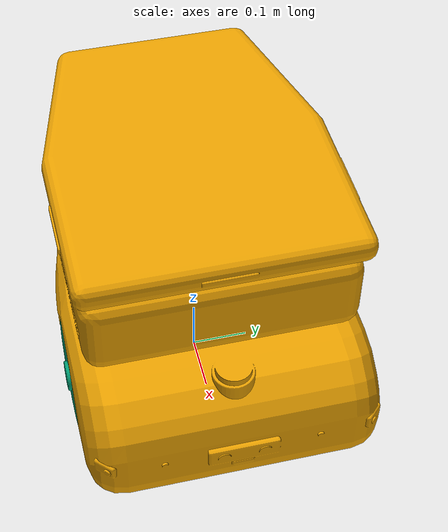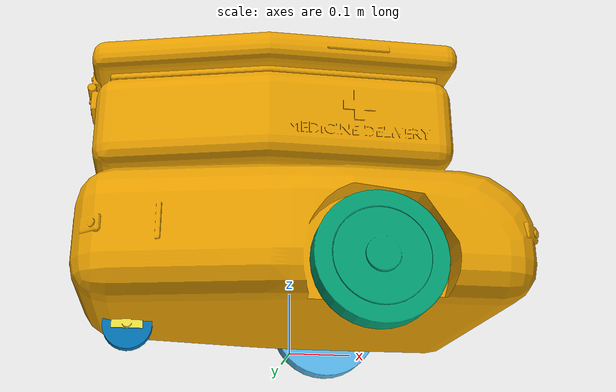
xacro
<?xml version="1.0"?>
<robot xmlns:xacro="http://www.ros.org/wiki/xacro" name="geraldo">

  <xacro:property name="body_mass" value="25.0"/>
  <xacro:property name="wheel_radius" value="0.10"/>
  <xacro:property name="wheel_width" value="0.04"/>
  <xacro:property name="wheel_mass" value="1.5"/>
  <xacro:property name="wheel_x" value="0.10"/>
  <xacro:property name="wheel_y" value="0.225"/>
  <!-- rodízio: pino vertical em (-0,25; 0; 0,09) e roda 1,5 cm atrás dele (trail), encostada no chão -->
  <xacro:property name="caster_pivot_x" value="-0.25"/>
  <xacro:property name="caster_pivot_z" value="0.09"/>
  <xacro:property name="caster_trail" value="0.015"/>
  <xacro:property name="caster_radius" value="0.04"/>
  <xacro:property name="caster_width" value="0.022"/>
  <xacro:property name="pi_2" value="1.5707963"/>

  <link name="base_link">
    <visual>
      <geometry>
        <mesh filename="package://geraldo_description/meshes/geraldo_body.obj"/>
      </geometry>
    </visual>
    <collision>
      <origin xyz="0 0 0.145"/>
      <geometry><box size="0.70 0.50 0.20"/></geometry>
    </collision>
    <collision>
      <origin xyz="-0.05 0 0.36"/>
      <geometry><box size="0.58 0.48 0.21"/></geometry>
    </collision>
    <inertial>
      <origin xyz="0 0 0.22"/>
      <mass value="${body_mass}"/>
      <inertia ixx="0.943" ixy="0" ixz="0" iyy="1.443" iyz="0" izz="1.542"/>
    </inertial>
  </link>

  <!-- as malhas saem do Blender em coordenadas do base_link; o visual desfaz o deslocamento da junta da roda -->
  <xacro:macro name="wheel" params="side y mesh">
    <link name="wheel_${side}_link">
      <visual>
        <origin xyz="${-wheel_x} ${-y} ${-wheel_radius}"/>
        <geometry><mesh filename="package://geraldo_description/meshes/${mesh}"/></geometry>
      </visual>
      <collision>
        <origin rpy="${pi_2} 0 0"/>
        <geometry><cylinder radius="${wheel_radius}" length="${wheel_width}"/></geometry>
      </collision>
      <inertial>
        <origin rpy="${pi_2} 0 0"/>
        <mass value="${wheel_mass}"/>
        <inertia ixx="0.00395" ixy="0" ixz="0" iyy="0.00395" iyz="0" izz="0.0075"/>
      </inertial>
    </link>
    <joint name="wheel_${side}_joint" type="continuous">
      <parent link="base_link"/>
      <child link="wheel_${side}_link"/>
      <origin xyz="${wheel_x} ${y} ${wheel_radius}"/>
      <axis xyz="0 1 0"/>
    </joint>
    <gazebo reference="wheel_${side}_link">
      <mu1>1.0</mu1>
      <mu2>1.0</mu2>
    </gazebo>
  </xacro:macro>

  <xacro:wheel side="left" y="${wheel_y}" mesh="roda_esq.obj"/>
  <xacro:wheel side="right" y="${-wheel_y}" mesh="roda_dir.obj"/>

  <!-- rodízio articulado: o garfo gira em torno do pino (Z) e a roda pequena rola em torno do próprio eixo (Y) -->
  <link name="caster_swivel_link">
    <visual>
      <origin xyz="${-caster_pivot_x} 0 ${-caster_pivot_z}"/>
      <geometry><mesh filename="package://geraldo_description/meshes/rodizio_garfo.obj"/></geometry>
    </visual>
    <inertial>
      <origin xyz="-0.007 0 -0.019"/>
      <mass value="0.3"/>
      <inertia ixx="0.0002" ixy="0" ixz="0" iyy="0.0002" iyz="0" izz="0.0002"/>
    </inertial>
  </link>
  <joint name="caster_swivel_joint" type="continuous">
    <parent link="base_link"/>
    <child link="caster_swivel_link"/>
    <origin xyz="${caster_pivot_x} 0 ${caster_pivot_z}"/>
    <axis xyz="0 0 1"/>
    <dynamics damping="0.05" friction="0.0"/>
  </joint>

  <link name="caster_wheel_link">
    <visual>
      <origin xyz="${-(caster_pivot_x - caster_trail)} 0 ${-caster_radius}"/>
      <geometry><mesh filename="package://geraldo_description/meshes/rodizio_roda.obj"/></geometry>
    </visual>
    <collision>
      <origin rpy="${pi_2} 0 0"/>
      <geometry><cylinder radius="${caster_radius}" length="${caster_width}"/></geometry>
    </collision>
    <inertial>
      <origin rpy="${pi_2} 0 0"/>
      <mass value="0.3"/>
      <inertia ixx="0.00013" ixy="0" ixz="0" iyy="0.00013" iyz="0" izz="0.00024"/>
    </inertial>
  </link>
  <joint name="caster_wheel_joint" type="continuous">
    <parent link="caster_swivel_link"/>
    <child link="caster_wheel_link"/>
    <origin xyz="${-caster_trail} 0 ${caster_radius - caster_pivot_z}"/>
    <axis xyz="0 1 0"/>
    <dynamics damping="0.001" friction="0.0"/>
  </joint>
  <gazebo reference="caster_wheel_link">
    <mu1>0.8</mu1>
    <mu2>0.8</mu2>
  </gazebo>

  <link name="lidar_link">
    <inertial>
      <mass value="0.1"/>
      <inertia ixx="0.00003" ixy="0" ixz="0" iyy="0.00003" iyz="0" izz="0.00004"/>
    </inertial>
  </link>
  <joint name="lidar_joint" type="fixed">
    <parent link="base_link"/>
    <child link="lidar_link"/>
    <origin xyz="0.275 0 0.259"/>
  </joint>

  <!-- O baú bloqueia a visão para trás do LiDAR (fica 3,5 cm atrás dele): o campo de visão simulado é de ~172 graus.
       A traseira é coberta pelos sensores de alcance a 135 graus (range_rear_*). -->
  <gazebo reference="lidar_link">
    <sensor name="lidar" type="gpu_lidar">
      <pose>0 0 0 0 0 0</pose>
      <topic>scan</topic>
      <gz_frame_id>lidar_link</gz_frame_id>
      <update_rate>10</update_rate>
      <always_on>true</always_on>
      <visualize>false</visualize>
      <lidar>
        <scan>
          <horizontal>
            <samples>360</samples>
            <resolution>1</resolution>
            <min_angle>-1.5</min_angle>
            <max_angle>1.5</max_angle>
          </horizontal>
        </scan>
        <range>
          <min>0.12</min>
          <max>12.0</max>
          <resolution>0.01</resolution>
        </range>
        <noise>
          <type>gaussian</type>
          <mean>0.0</mean>
          <stddev>0.01</stddev>
        </noise>
      </lidar>
    </sensor>
  </gazebo>

  <!-- Sensores de alcance (contrato): 5 feixes estreitos de até 2 m, um pouco fora da carcaça; nenhum a 180 graus -->
  <xacro:macro name="range_sensor" params="name x y yaw">
    <link name="range_${name}_link">
      <inertial>
        <mass value="0.01"/>
        <inertia ixx="0.000001" ixy="0" ixz="0" iyy="0.000001" iyz="0" izz="0.000001"/>
      </inertial>
    </link>
    <joint name="range_${name}_joint" type="fixed">
      <parent link="base_link"/>
      <child link="range_${name}_link"/>
      <origin xyz="${x} ${y} 0.15" rpy="0 0 ${yaw}"/>
    </joint>
    <gazebo reference="range_${name}_link">
      <sensor name="range_${name}" type="gpu_lidar">
        <pose>0 0 0 0 0 0</pose>
        <topic>range/${name}</topic>
        <gz_frame_id>range_${name}_link</gz_frame_id>
        <update_rate>10</update_rate>
        <always_on>true</always_on>
        <visualize>false</visualize>
        <lidar>
          <scan>
            <horizontal>
              <samples>5</samples>
              <resolution>1</resolution>
              <min_angle>-0.087</min_angle>
              <max_angle>0.087</max_angle>
            </horizontal>
          </scan>
          <range>
            <min>0.05</min>
            <max>2.0</max>
            <resolution>0.01</resolution>
          </range>
        </lidar>
      </sensor>
    </gazebo>
  </xacro:macro>
  <xacro:range_sensor name="front_c" x="0.36" y="0.0" yaw="0.0"/>
  <xacro:range_sensor name="front_l45" x="0.33" y="0.26" yaw="0.7854"/>
  <xacro:range_sensor name="front_r45" x="0.33" y="-0.26" yaw="-0.7854"/>
  <xacro:range_sensor name="rear_l135" x="-0.33" y="0.26" yaw="2.3562"/>
  <xacro:range_sensor name="rear_r135" x="-0.33" y="-0.26" yaw="-2.3562"/>

  <gazebo>
    <plugin filename="gz-sim-diff-drive-system" name="gz::sim::systems::DiffDrive">
      <left_joint>wheel_left_joint</left_joint>
      <right_joint>wheel_right_joint</right_joint>
      <wheel_separation>0.45</wheel_separation>
      <wheel_radius>0.10</wheel_radius>
      <odom_publish_frequency>30</odom_publish_frequency>
      <topic>/cmd_vel</topic>
      <odom_topic>/odom</odom_topic>
      <tf_topic>/tf</tf_topic>
      <frame_id>odom</frame_id>
      <child_frame_id>base_link</child_frame_id>
      <max_linear_velocity>1.0</max_linear_velocity>
      <max_angular_velocity>2.0</max_angular_velocity>
    </plugin>
  </gazebo>
</robot>
